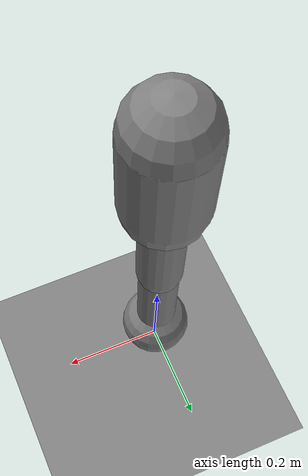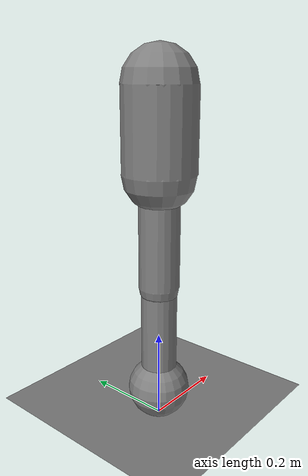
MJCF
<mujoco model="native_upgrade_contact_hopper">
  <compiler angle="radian"/>
  <option timestep="0.004" gravity="0 0 -9.81" integrator="Euler" iterations="100" tolerance="1e-10"/>
  <default>
    <joint armature="0.01" damping="0.08"/>
    <geom density="600" friction="0.8 0.02 0.001" solref="0.1 2"/>
  </default>
  <worldbody>
    <geom name="ground" type="plane" size="3 3 0.1" density="0"/>
    <body name="hopper_root" pos="0 0 0.75">
      <freejoint name="root_free"/>
      <geom name="torso_geom" type="capsule" fromto="0 0 0 0 0 -0.18" size="0.08" contype="0" conaffinity="0"/>
      <body name="upper_leg" pos="0 0 -0.18">
        <joint name="hip" type="hinge" axis="0 1 0" range="-1.2 1.2" limited="true"/>
        <geom name="upper_leg_geom" type="capsule" fromto="0 0 0 0 0 -0.25" size="0.045" contype="0" conaffinity="0"/>
        <body name="lower_leg" pos="0 0 -0.25">
          <joint name="knee" type="hinge" axis="0 1 0" range="-1.5 0.5" limited="true"/>
          <geom name="lower_leg_geom" type="capsule" fromto="0 0 0 0 0 -0.22" size="0.04" contype="0" conaffinity="0"/>
          <geom name="foot" type="sphere" pos="0 0 -0.25" size="0.07" mass="0.3"/>
        </body>
      </body>
    </body>
  </worldbody>
  <actuator>
    <motor name="hip_drive" joint="hip" gear="2" ctrllimited="true" ctrlrange="-1 1"/>
    <motor name="knee_drive" joint="knee" gear="2" ctrllimited="true" ctrlrange="-1 1"/>
  </actuator>
  <sensor>
    <jointpos name="hip_position" joint="hip"/>
    <jointpos name="knee_position" joint="knee"/>
  </sensor>
</mujoco>
